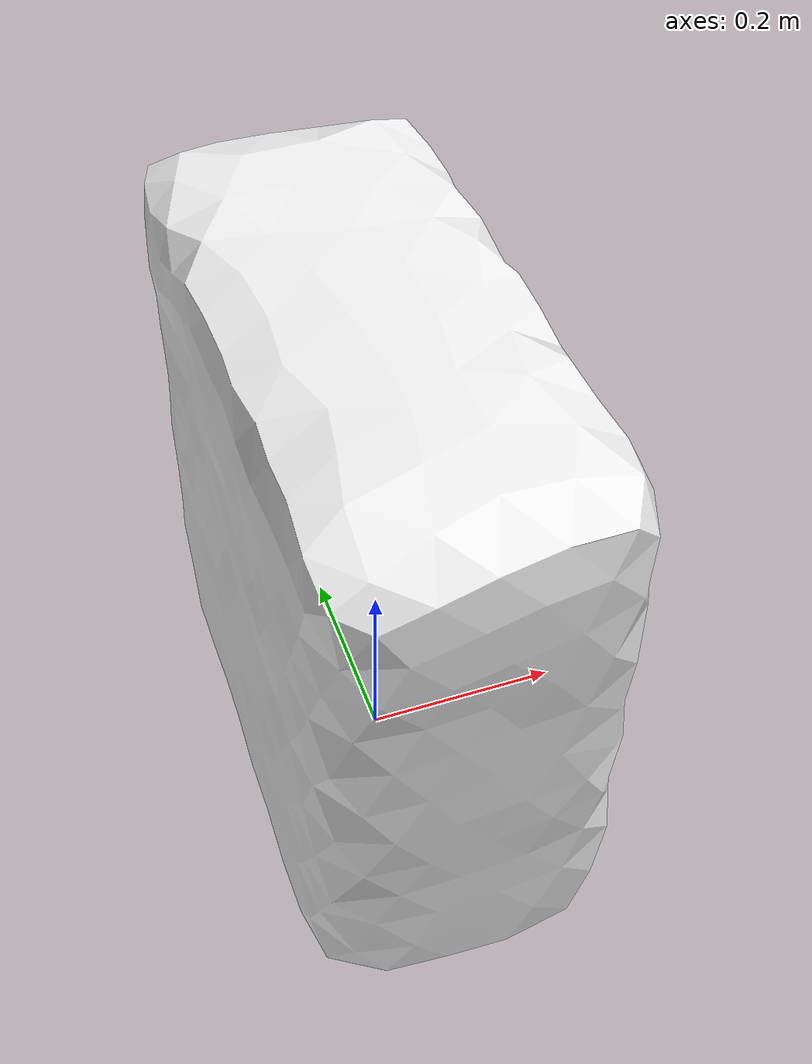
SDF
<?xml version="1.0" ?><sdf version="1.5"><model name="warrior-box1">
<link name="link">
<pose>0 0 0 0 0 0</pose>
<inertial>
<pose>-0.0149085 -0.031052 0.306953 0 0 0</pose>
<mass>1.105</mass>
<inertia>
<ixx>0.0600902</ixx>
<ixy>0</ixy><iyy>0.037323</iyy>
<ixz>0</ixz><iyz>0</iyz><izz>0.0363422</izz>
</inertia>
</inertial>
<visual name="visual">
<pose>0 0 0 0 0 0</pose>
<geometry><mesh><uri>model://warrior-box1/meshes/warrior-box1.dae</uri></mesh></geometry>
<material><script><uri>file://media/materials/scripts/gazebo.material</uri><name>Gazebo/WhiteGlow</name></script></material></visual>
<collision name="collision"><pose>0 0 0 0 0 0</pose><geometry><mesh><uri>model://warrior-box1/meshes/warrior-box1.dae</uri></mesh></geometry>
<surface><friction><ode><mu>1.000000</mu><mu2>1.000000</mu2></ode></friction></surface>
</collision></link></model></sdf>
